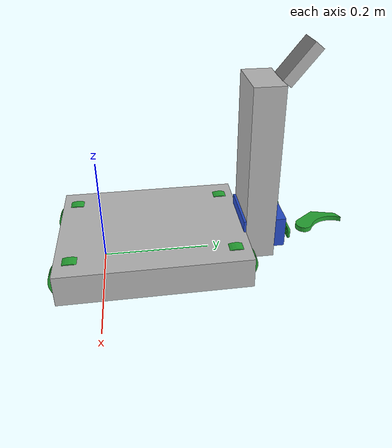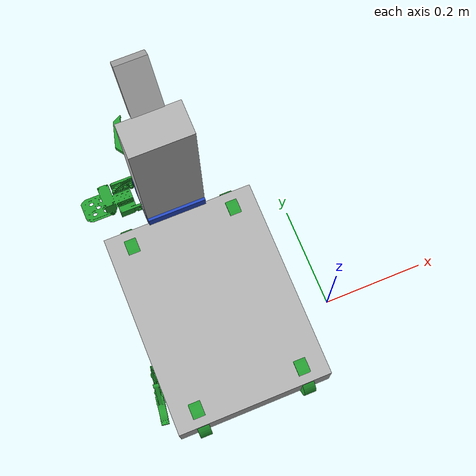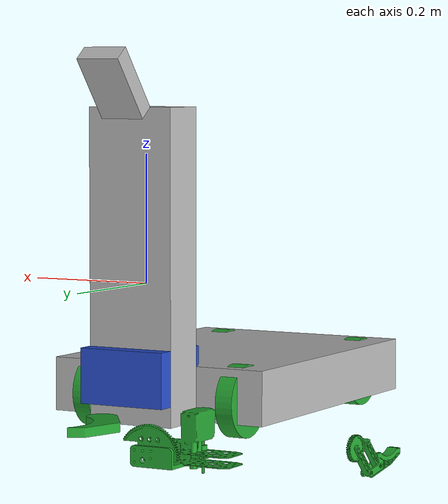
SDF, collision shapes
<?xml version='1.0'?>
<sdf version='1.5'>
  <model name='GearsBot'>
    <link name='chassis'>
      <pose frame=''>0 0 0 0 0 0</pose>
      <inertial>
        <pose frame=''>-0.18899 0.121417 -0.076574 0 -0 0</pose>
        <mass>5.1239</mass>
        <inertia>
          <ixx>0.146667</ixx>
          <ixy>-0.00194486</ixy>
          <ixz>0.00389928</ixz>
          <iyy>0.0922389</iyy>
          <iyz>0.00996714</iyz>
          <izz>0.138363</izz>
        </inertia>
      </inertial>
      <self_collide>0</self_collide>
      <kinematic>0</kinematic>
      <velocity_decay/>
      <sensor name='chassisUltrasonic' type='sonar'>
        <always_on>1</always_on>
        <pose frame=''>-0.125 0.375 -0.085 1.5708 -0 0</pose>
        <sonar>
          <min>0</min>
          <max>2</max>
          <radius>0.1</radius>
        </sonar>
      </sensor>
      <sensor name='robotCamera' type='camera'>
        <visualize>1</visualize>
        <camera name='__default__'>
          <horizontal_fov>1.5</horizontal_fov>
          <image>
            <width>320</width>
            <height>240</height>
          </image>
          <clip>
            <near>0.1</near>
            <far>100</far>
          </clip>
        </camera>
        <pose frame=''>-0.20115 0.42488 0.30943 -0 0.9 1.5708</pose>
      </sensor>
      <visual name='chassis_lump::Camera_visual_1'>
        <pose frame=''>-0.20115 0.42488 0.30943 2.2416 1e-06 -3.14158</pose>
        <geometry>
          <mesh>
            <scale>1 1 1</scale>
            <uri>model://GearsBot/meshes/Camera.STL</uri>
          </mesh>
        </geometry>
        <material>
          <shader type='pixel'/>
        </material>
        <cast_shadows>1</cast_shadows>
        <transparency>0</transparency>
      </visual>
      <visual name='chassis_visual'>
        <pose frame=''>-0.2011 0.0952 -0.1162 0 -0 0</pose>
        <geometry>
          <mesh>
            <scale>1 1 1</scale>
            <uri>model://GearsBot/meshes/chassis.STL</uri>
          </mesh>
        </geometry>
        <material>
          <script>
            <name>Gazebo/Grey</name>
            <uri>file://media/materials/scripts/gazebo.material</uri>
          </script>
          <shader type='pixel'/>
          <ambient>0.3 0.3 0.3 1</ambient>
          <diffuse>0.7 0.7 0.7 1</diffuse>
          <specular>0.01 0.01 0.01 1</specular>
          <emissive>0 0 0 1</emissive>
        </material>
        <cast_shadows>1</cast_shadows>
        <transparency>0</transparency>
      </visual>
      <collision name='chassis_collision'>
        <laser_retro>0</laser_retro>
        <max_contacts>10</max_contacts>
        <pose frame=''>0 0 0 0 -0 0</pose>
        <geometry>
          <mesh>
            <uri>model://GearsBot/meshes/collision/chassis.STL</uri>
          </mesh>
        </geometry>
        <surface>
          <friction>
            <ode>
              <mu>1</mu>
              <mu2>1</mu2>
              <fdir1>0 0 0</fdir1>
              <slip1>0</slip1>
              <slip2>0</slip2>
            </ode>
          </friction>
          <bounce>
            <restitution_coefficient>0</restitution_coefficient>
            <threshold>1e+06</threshold>
          </bounce>
          <contact>
            <collide_without_contact>0</collide_without_contact>
            <collide_without_contact_bitmask>1</collide_without_contact_bitmask>
            <collide_bitmask>1</collide_bitmask>
            <ode>
              <soft_cfm>0</soft_cfm>
              <soft_erp>0.2</soft_erp>
              <kp>1e+13</kp>
              <kd>1</kd>
              <max_vel>0.01</max_vel>
              <min_depth>0</min_depth>
            </ode>
            <bullet>
              <split_impulse>1</split_impulse>
              <split_impulse_penetration_threshold>-0.01</split_impulse_penetration_threshold>
              <soft_cfm>0</soft_cfm>
              <soft_erp>0.2</soft_erp>
              <kp>1e+13</kp>
              <kd>1</kd>
            </bullet>
          </contact>
        </surface>
      </collision>
      <collision name='Camera_collision_1'>
        <laser_retro>0</laser_retro>
        <max_contacts>10</max_contacts>
        <pose frame=''>-0.20115 0.42488 0.30943 1.5708 -0.9 1.5708</pose>
        <geometry>
          <mesh>
            <uri>model://GearsBot/meshes/collision/camera.STL</uri>
          </mesh>
        </geometry>
        <surface>
          <friction>
            <ode>
              <mu>1</mu>
              <mu2>1</mu2>
              <fdir1>0 0 0</fdir1>
              <slip1>0</slip1>
              <slip2>0</slip2>
            </ode>
          </friction>
          <bounce>
            <restitution_coefficient>0</restitution_coefficient>
            <threshold>1e+06</threshold>
          </bounce>
          <contact>
            <collide_without_contact>0</collide_without_contact>
            <collide_without_contact_bitmask>1</collide_without_contact_bitmask>
            <collide_bitmask>1</collide_bitmask>
            <ode>
              <soft_cfm>0</soft_cfm>
              <soft_erp>0.2</soft_erp>
              <kp>1e+13</kp>
              <kd>1</kd>
              <max_vel>0.01</max_vel>
              <min_depth>0</min_depth>
            </ode>
            <bullet>
              <split_impulse>1</split_impulse>
              <split_impulse_penetration_threshold>-0.01</split_impulse_penetration_threshold>
              <soft_cfm>0</soft_cfm>
              <soft_erp>0.2</soft_erp>
              <kp>1e+13</kp>
              <kd>1</kd>
            </bullet>
          </contact>
        </surface>
      </collision>
    </link>
    <link name='backLeftWheel'>
      <pose frame=''>-0.3154 -0.08895 -0.12636 0 -0 1.5708</pose>
      <inertial>
        <pose frame=''>-0.022263 -0.001581 0.02216 0 -0 0</pose>
        <mass>0.18296</mass>
        <inertia>
          <ixx>0.00014966</ixx>
          <ixy>-2.6368e-09</ixy>
          <ixz>2.0517e-09</ixz>
          <iyy>0.00023567</iyy>
          <iyz>1.7444e-09</iyz>
          <izz>0.00014965</izz>
        </inertia>
      </inertial>
      <self_collide>0</self_collide>
      <kinematic>0</kinematic>
      <velocity_decay/>
      <visual name='backLeftWheel_visual'>
        <pose frame=''>0 0 0 0 -0 0</pose>
        <geometry>
          <mesh>
            <scale>1 1 1</scale>
            <uri>model://GearsBot/meshes/collision/OmniCollisional.STL</uri>
          </mesh>
        </geometry>
        <material>
          <script>
            <name>Gazebo/Green</name>
            <uri>file://media/materials/scripts/gazebo.material</uri>
          </script>
          <shader type='pixel'/>
          <ambient>0 1 0 1</ambient>
          <diffuse>0 1 0 1</diffuse>
          <specular>0.1 0.1 0.1 1</specular>
          <emissive>0 0 0 1</emissive>
        </material>
        <cast_shadows>1</cast_shadows>
        <transparency>0</transparency>
      </visual>
      <collision name='backLeftWheel_collision'>
        <laser_retro>0</laser_retro>
        <max_contacts>10</max_contacts>
        <pose frame=''>0 0 0 0 -0 0</pose>
        <geometry>
          <mesh>
            <uri>model://GearsBot/meshes/collision/OmniCollisional.STL</uri>
          </mesh>
        </geometry>
        <surface>
          <friction>
            <ode>
              <mu>1</mu>
              <mu2>1</mu2>
              <fdir1>0 0 0</fdir1>
              <slip1>0</slip1>
              <slip2>0</slip2>
            </ode>
          </friction>
          <bounce>
            <restitution_coefficient>0</restitution_coefficient>
            <threshold>1e+06</threshold>
          </bounce>
          <contact>
            <collide_without_contact>0</collide_without_contact>
            <collide_without_contact_bitmask>1</collide_without_contact_bitmask>
            <collide_bitmask>1</collide_bitmask>
            <ode>
              <soft_cfm>0</soft_cfm>
              <soft_erp>0.2</soft_erp>
              <kp>1e+13</kp>
              <kd>1</kd>
              <max_vel>0.01</max_vel>
              <min_depth>0</min_depth>
            </ode>
            <bullet>
              <split_impulse>1</split_impulse>
              <split_impulse_penetration_threshold>-0.01</split_impulse_penetration_threshold>
              <soft_cfm>0</soft_cfm>
              <soft_erp>0.2</soft_erp>
              <kp>1e+13</kp>
              <kd>1</kd>
            </bullet>
          </contact>
        </surface>
      </collision>
    </link>
    <link name='backRightWheel'>
      <pose frame=''>-0.0868 -0.08895 -0.12636 0 -0 1.5708</pose>
      <inertial>
        <pose frame=''>-0.014099 -0.004525 0.009528 0 -0 0</pose>
        <mass>0.18343</mass>
        <inertia>
          <ixx>0.00015108</ixx>
          <ixy>2.4641e-09</ixy>
          <ixz>3.2659e-09</ixz>
          <iyy>0.00023589</iyy>
          <iyz>1.3873e-08</iyz>
          <izz>0.00015106</izz>
        </inertia>
      </inertial>
      <self_collide>0</self_collide>
      <kinematic>0</kinematic>
      <velocity_decay/>
      <visual name='backRightWheel_visual'>
        <pose frame=''>0 0 0 0 -0 0</pose>
        <geometry>
          <mesh>
            <scale>1 1 1</scale>
            <uri>model://GearsBot/meshes/collision/OmniCollisional.STL</uri>
          </mesh>
        </geometry>
        <material>
          <script>
            <name>Gazebo/Green</name>
            <uri>file://media/materials/scripts/gazebo.material</uri>
          </script>
          <shader type='pixel'/>
          <ambient>0 1 0 1</ambient>
          <diffuse>0 1 0 1</diffuse>
          <specular>0.1 0.1 0.1 1</specular>
          <emissive>0 0 0 1</emissive>
        </material>
        <cast_shadows>1</cast_shadows>
        <transparency>0</transparency>
      </visual>
      <collision name='backRightWheel_collision'>
        <laser_retro>0</laser_retro>
        <max_contacts>10</max_contacts>
        <pose frame=''>0 0 0 0 -0 0</pose>
        <geometry>
          <mesh>
            <uri>model://GearsBot/meshes/collision/OmniCollisional.STL</uri>
          </mesh>
        </geometry>
        <surface>
          <friction>
            <ode>
              <mu>1</mu>
              <mu2>1</mu2>
              <fdir1>0 0 0</fdir1>
              <slip1>0</slip1>
              <slip2>0</slip2>
            </ode>
          </friction>
          <bounce>
            <restitution_coefficient>0</restitution_coefficient>
            <threshold>1e+06</threshold>
          </bounce>
          <contact>
            <collide_without_contact>0</collide_without_contact>
            <collide_without_contact_bitmask>1</collide_without_contact_bitmask>
            <collide_bitmask>1</collide_bitmask>
            <ode>
              <soft_cfm>0</soft_cfm>
              <soft_erp>0.2</soft_erp>
              <kp>1e+13</kp>
              <kd>1</kd>
              <max_vel>0.01</max_vel>
              <min_depth>0</min_depth>
            </ode>
            <bullet>
              <split_impulse>1</split_impulse>
              <split_impulse_penetration_threshold>-0.01</split_impulse_penetration_threshold>
              <soft_cfm>0</soft_cfm>
              <soft_erp>0.2</soft_erp>
              <kp>1e+13</kp>
              <kd>1</kd>
            </bullet>
          </contact>
        </surface>
      </collision>
    </link>
    <link name='elevator'>
      <pose frame=''>0 0 0 0 0 0</pose>
      <inertial>
        <pose frame=''>-0.20055 0.36444 -0.084693 0 -0 0</pose>
        <mass>0.14903</mass>
        <inertia>
          <ixx>0.00015713</ixx>
          <ixy>-2.1626e-06</ixy>
          <ixz>1.588e-06</ixz>
          <iyy>0.00030244</iyy>
          <iyz>-3.8445e-05</iyz>
          <izz>0.00032189</izz>
        </inertia>
      </inertial>
      <self_collide>0</self_collide>
      <kinematic>0</kinematic>
      <velocity_decay/>
      <visual name='elevator_visual'>
        <pose frame=''>-0.2011 0.0952 -0.1162 0 -0 0</pose>
        <geometry>
          <mesh>
            <scale>1 1 1</scale>
            <uri>model://GearsBot/meshes/elevator.STL</uri>
          </mesh>
        </geometry>
        <material>
          <script>
            <name>Gazebo/Blue</name>
            <uri>file://media/materials/scripts/gazebo.material</uri>
          </script>
          <shader type='pixel'/>
          <ambient>0 0 1 1</ambient>
          <diffuse>0 0 1 1</diffuse>
          <specular>0.1 0.1 0.1 1</specular>
          <emissive>0 0 0 1</emissive>
        </material>
        <cast_shadows>1</cast_shadows>
        <transparency>0</transparency>
      </visual>
      <collision name='elevator_collision'>
        <laser_retro>0</laser_retro>
        <max_contacts>10</max_contacts>
        <pose frame=''>0 0 0 0 -0 0</pose>
        <geometry>
          <mesh>
            <uri>model://GearsBot/meshes/collision/elevator.STL</uri>
          </mesh>
        </geometry>
        <surface>
          <friction>
            <ode>
              <mu>1</mu>
              <mu2>1</mu2>
              <fdir1>0 0 0</fdir1>
              <slip1>0</slip1>
              <slip2>0</slip2>
            </ode>
          </friction>
          <bounce>
            <restitution_coefficient>0</restitution_coefficient>
            <threshold>1e+06</threshold>
          </bounce>
          <contact>
            <collide_without_contact>0</collide_without_contact>
            <collide_without_contact_bitmask>1</collide_without_contact_bitmask>
            <collide_bitmask>1</collide_bitmask>
            <ode>
              <soft_cfm>0</soft_cfm>
              <soft_erp>0.2</soft_erp>
              <kp>1e+13</kp>
              <kd>1</kd>
              <max_vel>0.01</max_vel>
              <min_depth>0</min_depth>
            </ode>
            <bullet>
              <split_impulse>1</split_impulse>
              <split_impulse_penetration_threshold>-0.01</split_impulse_penetration_threshold>
              <soft_cfm>0</soft_cfm>
              <soft_erp>0.2</soft_erp>
              <kp>1e+13</kp>
              <kd>1</kd>
            </bullet>
          </contact>
        </surface>
      </collision>
    </link>
    <link name='frontLeftWheel'>
      <pose frame=''>-0.3154 0.27935 -0.12636 0 -0 1.5708</pose>
      <inertial>
        <pose frame=''>-0.0141 -0.004525 0.009528 0 -0 0</pose>
        <mass>0.183431</mass>
        <inertia>
          <ixx>0.000151077</ixx>
          <ixy>2.46441e-09</ixy>
          <ixz>3.26639e-09</ixz>
          <iyy>0.00023589</iyy>
          <iyz>1.38724e-08</iyz>
          <izz>0.000151063</izz>
        </inertia>
      </inertial>
      <self_collide>0</self_collide>
      <kinematic>0</kinematic>
      <velocity_decay/>
      <visual name='frontLeftWheel_visual'>
        <pose frame=''>0 0 0 0 -0 0</pose>
        <geometry>
          <mesh>
            <scale>1 1 1</scale>
            <uri>model://GearsBot/meshes/collision/OmniCollisional.STL</uri>
          </mesh>
        </geometry>
        <material>
          <script>
            <name>Gazebo/Green</name>
            <uri>file://media/materials/scripts/gazebo.material</uri>
          </script>
          <shader type='pixel'/>
          <ambient>0 1 0 1</ambient>
          <diffuse>0 1 0 1</diffuse>
          <specular>0.1 0.1 0.1 1</specular>
          <emissive>0 0 0 1</emissive>
        </material>
        <cast_shadows>1</cast_shadows>
        <transparency>0</transparency>
      </visual>
      <collision name='frontLeftWheel_collision'>
        <laser_retro>0</laser_retro>
        <max_contacts>10</max_contacts>
        <pose frame=''>0 0 0 0 -0 0</pose>
        <geometry>
          <mesh>
            <uri>model://GearsBot/meshes/collision/OmniCollisional.STL</uri>
          </mesh>
        </geometry>
        <surface>
          <friction>
            <ode>
              <mu>1</mu>
              <mu2>1</mu2>
              <fdir1>0 0 0</fdir1>
              <slip1>0</slip1>
              <slip2>0</slip2>
            </ode>
          </friction>
          <bounce>
            <restitution_coefficient>0</restitution_coefficient>
            <threshold>1e+06</threshold>
          </bounce>
          <contact>
            <collide_without_contact>0</collide_without_contact>
            <collide_without_contact_bitmask>1</collide_without_contact_bitmask>
            <collide_bitmask>1</collide_bitmask>
            <ode>
              <soft_cfm>0</soft_cfm>
              <soft_erp>0.2</soft_erp>
              <kp>1e+13</kp>
              <kd>1</kd>
              <max_vel>0.01</max_vel>
              <min_depth>0</min_depth>
            </ode>
            <bullet>
              <split_impulse>1</split_impulse>
              <split_impulse_penetration_threshold>-0.01</split_impulse_penetration_threshold>
              <soft_cfm>0</soft_cfm>
              <soft_erp>0.2</soft_erp>
              <kp>1e+13</kp>
              <kd>1</kd>
            </bullet>
          </contact>
        </surface>
      </collision>
    </link>
    <link name='frontRightWheel'>
      <pose frame=''>-0.0868 0.27935 -0.12636 0 -0 1.5708</pose>
      <inertial>
        <pose frame=''>-0.022263 -0.001581 0.02216 0 -0 0</pose>
        <mass>0.182962</mass>
        <inertia>
          <ixx>0.000149655</ixx>
          <ixy>-2.6172e-09</ixy>
          <ixz>2.06617e-09</ixz>
          <iyy>0.000235671</iyy>
          <iyz>1.7582e-09</iyz>
          <izz>0.000149649</izz>
        </inertia>
      </inertial>
      <self_collide>0</self_collide>
      <kinematic>0</kinematic>
      <velocity_decay/>
      <visual name='frontRightWheel_visual'>
        <pose frame=''>0 0 0 0 -0 0</pose>
        <geometry>
          <mesh>
            <scale>1 1 1</scale>
            <uri>model://GearsBot/meshes/collision/OmniCollisional.STL</uri>
          </mesh>
        </geometry>
        <material>
          <script>
            <name>Gazebo/Green</name>
            <uri>file://media/materials/scripts/gazebo.material</uri>
          </script>
          <shader type='pixel'/>
          <ambient>0 1 0 1</ambient>
          <diffuse>0 1 0 1</diffuse>
          <specular>0.1 0.1 0.1 1</specular>
          <emissive>0 0 0 1</emissive>
        </material>
        <cast_shadows>1</cast_shadows>
        <transparency>0</transparency>
      </visual>
      <collision name='frontRightWheel_collision'>
        <laser_retro>0</laser_retro>
        <max_contacts>10</max_contacts>
        <pose frame=''>0 0 0 0 -0 0</pose>
        <geometry>
          <mesh>
            <uri>model://GearsBot/meshes/collision/OmniCollisional.STL</uri>
          </mesh>
        </geometry>
        <surface>
          <friction>
            <ode>
              <mu>1</mu>
              <mu2>1</mu2>
              <fdir1>0 0 0</fdir1>
              <slip1>0</slip1>
              <slip2>0</slip2>
            </ode>
          </friction>
          <bounce>
            <restitution_coefficient>0</restitution_coefficient>
            <threshold>1e+06</threshold>
          </bounce>
          <contact>
            <collide_without_contact>0</collide_without_contact>
            <collide_without_contact_bitmask>1</collide_without_contact_bitmask>
            <collide_bitmask>1</collide_bitmask>
            <ode>
              <soft_cfm>0</soft_cfm>
              <soft_erp>0.2</soft_erp>
              <kp>1e+13</kp>
              <kd>1</kd>
              <max_vel>0.01</max_vel>
              <min_depth>0</min_depth>
            </ode>
            <bullet>
              <split_impulse>1</split_impulse>
              <split_impulse_penetration_threshold>-0.01</split_impulse_penetration_threshold>
              <soft_cfm>0</soft_cfm>
              <soft_erp>0.2</soft_erp>
              <kp>1e+13</kp>
              <kd>1</kd>
            </bullet>
          </contact>
        </surface>
      </collision>
    </link>
    <link name='leftFinger'>
      <pose frame=''>-0.219621 0.48766 -0.133285 1.5708 4e-06 -2.9837</pose>
      <inertial>
        <pose frame=''>0.013123 -0 0.03315 0 -0 0</pose>
        <mass>0.049208</mass>
        <inertia>
          <ixx>5.2203e-05</ixx>
          <ixy>-4.2027e-22</ixy>
          <ixz>1.0345e-05</ixz>
          <iyy>6.106e-05</iyy>
          <iyz>-2.2949e-21</iyz>
          <izz>1.018e-05</izz>
        </inertia>
      </inertial>
      <self_collide>0</self_collide>
      <kinematic>0</kinematic>
      <velocity_decay/>
      <sensor name='leftFingerContact' type='contact'>
        <always_on>1</always_on>
        <contact>
          <collision>leftFinger_collision</collision>
          <topic>__default_topic__</topic>
        </contact>
      </sensor>
      <visual name='leftFinger_visual'>
        <pose frame=''>0 0 0 0 -0 0</pose>
        <geometry>
          <mesh>
            <scale>1 1 1</scale>
            <uri>model://GearsBot/meshes/collision/leftFinger.STL</uri>
          </mesh>
        </geometry>
        <material>
          <script>
            <name>Gazebo/Green</name>
            <uri>file://media/materials/scripts/gazebo.material</uri>
          </script>
          <shader type='pixel'/>
          <ambient>0 1 0 1</ambient>
          <diffuse>0 1 0 1</diffuse>
          <specular>0.1 0.1 0.1 1</specular>
          <emissive>0 0 0 1</emissive>
        </material>
        <cast_shadows>1</cast_shadows>
        <transparency>0</transparency>
      </visual>
      <collision name='leftFingerCollision_collision'>
        <laser_retro>0</laser_retro>
        <max_contacts>10</max_contacts>
        <pose frame=''>0 0 0 0 -0 0</pose>
        <geometry>
          <mesh>
            <uri>model://GearsBot/meshes/collision/leftFinger.STL</uri>
          </mesh>
        </geometry>
        <surface>
          <friction>
            <ode>
              <mu>1</mu>
              <mu2>1</mu2>
              <fdir1>0 0 0</fdir1>
              <slip1>0</slip1>
              <slip2>0</slip2>
            </ode>
          </friction>
          <bounce>
            <restitution_coefficient>0</restitution_coefficient>
            <threshold>1e+06</threshold>
          </bounce>
          <contact>
            <collide_without_contact>0</collide_without_contact>
            <collide_without_contact_bitmask>1</collide_without_contact_bitmask>
            <collide_bitmask>1</collide_bitmask>
            <ode>
              <soft_cfm>0</soft_cfm>
              <soft_erp>0.2</soft_erp>
              <kp>1e+13</kp>
              <kd>1</kd>
              <max_vel>0.01</max_vel>
              <min_depth>0</min_depth>
            </ode>
            <bullet>
              <split_impulse>1</split_impulse>
              <split_impulse_penetration_threshold>-0.01</split_impulse_penetration_threshold>
              <soft_cfm>0</soft_cfm>
              <soft_erp>0.2</soft_erp>
              <kp>1e+13</kp>
              <kd>1</kd>
            </bullet>
          </contact>
        </surface>
      </collision>
    </link>
    <link name='rightFinger'>
      <pose frame=''>-0.181521 0.48766 -0.133285 -1.5708 -4e-06 -0.1386</pose>
      <inertial>
        <pose frame=''>0.013123 -0 0.03315 0 -0 0</pose>
        <mass>0.049208</mass>
        <inertia>
          <ixx>5.2203e-05</ixx>
          <ixy>-3.4627e-22</ixy>
          <ixz>1.0345e-05</ixz>
          <iyy>6.106e-05</iyy>
          <iyz>-2.9606e-22</iyz>
          <izz>1.018e-05</izz>
        </inertia>
      </inertial>
      <self_collide>0</self_collide>
      <kinematic>0</kinematic>
      <velocity_decay/>
      <visual name='rightFinger_visual'>
        <pose frame=''>0 0 0 0 -0 0</pose>
        <geometry>
          <mesh>
            <scale>1 1 1</scale>
            <uri>model://GearsBot/meshes/collision/rightFinger.STL</uri>
          </mesh>
        </geometry>
        <material>
          <script>
            <name>Gazebo/Green</name>
            <uri>file://media/materials/scripts/gazebo.material</uri>
          </script>
          <shader type='pixel'/>
          <ambient>0 1 0 1</ambient>
          <diffuse>0 1 0 1</diffuse>
          <specular>0.1 0.1 0.1 1</specular>
          <emissive>0 0 0 1</emissive>
        </material>
        <cast_shadows>1</cast_shadows>
        <transparency>0</transparency>
      </visual>
      <collision name='rightFingerCollision_collision'>
        <laser_retro>0</laser_retro>
        <max_contacts>10</max_contacts>
        <pose frame=''>0 0 0 0 -0 0</pose>
        <geometry>
          <mesh>
            <uri>model://GearsBot/meshes/collision/rightFinger.STL</uri>
          </mesh>
        </geometry>
        <surface>
          <friction>
            <ode>
              <mu>1</mu>
              <mu2>1</mu2>
              <fdir1>0 0 0</fdir1>
              <slip1>0</slip1>
              <slip2>0</slip2>
            </ode>
          </friction>
          <bounce>
            <restitution_coefficient>0</restitution_coefficient>
            <threshold>1e+06</threshold>
          </bounce>
          <contact>
            <collide_without_contact>0</collide_without_contact>
            <collide_without_contact_bitmask>1</collide_without_contact_bitmask>
            <collide_bitmask>1</collide_bitmask>
            <ode>
              <soft_cfm>0</soft_cfm>
              <soft_erp>0.2</soft_erp>
              <kp>1e+13</kp>
              <kd>1</kd>
              <max_vel>0.01</max_vel>
              <min_depth>0</min_depth>
            </ode>
            <bullet>
              <split_impulse>1</split_impulse>
              <split_impulse_penetration_threshold>-0.01</split_impulse_penetration_threshold>
              <soft_cfm>0</soft_cfm>
              <soft_erp>0.2</soft_erp>
              <kp>1e+13</kp>
              <kd>1</kd>
            </bullet>
          </contact>
        </surface>
      </collision>
    </link>
    <link name='wrist'>
      <pose frame=''>-0.20115 0.42766 -0.13828 1.5708 0 -1.5708</pose>
      <inertial>
        <pose frame=''>-7.1e-05 0.016629 0.040792 0 -0 0</pose>
        <mass>0.20421</mass>
        <inertia>
          <ixx>0.00051443</ixx>
          <ixy>9.0062e-07</ixy>
          <ixz>1.1456e-05</ixz>
          <iyy>0.00058716</iyy>
          <iyz>-1.571e-05</iyz>
          <izz>0.00018931</izz>
        </inertia>
      </inertial>
      <self_collide>0</self_collide>
      <kinematic>0</kinematic>
      <velocity_decay/>
      <visual name='wrist_visual'>
        <pose frame=''>0.095 0.05 0 0 -1.57 0</pose>
        <geometry>
          <mesh>
            <scale>1 1 1</scale>
            <uri>model://GearsBot/meshes/wrist.STL</uri>
          </mesh>
        </geometry>
        <material>
          <script>
            <name>Gazebo/Green</name>
            <uri>file://media/materials/scripts/gazebo.material</uri>
          </script>
          <shader type='pixel'/>
          <ambient>0 1 0 1</ambient>
          <diffuse>0 1 0 1</diffuse>
          <specular>0.1 0.1 0.1 1</specular>
          <emissive>0 0 0 1</emissive>
        </material>
        <cast_shadows>1</cast_shadows>
        <transparency>0</transparency>
      </visual>
      <collision name='wrist_collision'>
        <laser_retro>0</laser_retro>
        <max_contacts>10</max_contacts>
        <pose frame=''>0 0 0 0 -0 0</pose>
        <geometry>
          <mesh>
            <uri>model://GearsBot/meshes/collision/wrist.STL</uri>
          </mesh>
        </geometry>
        <surface>
          <friction>
            <ode>
              <mu>1</mu>
              <mu2>1</mu2>
              <fdir1>0 0 0</fdir1>
              <slip1>0</slip1>
              <slip2>0</slip2>
            </ode>
          </friction>
          <bounce>
            <restitution_coefficient>0</restitution_coefficient>
            <threshold>1e+06</threshold>
          </bounce>
          <contact>
            <collide_without_contact>0</collide_without_contact>
            <collide_without_contact_bitmask>1</collide_without_contact_bitmask>
            <collide_bitmask>1</collide_bitmask>
            <ode>
              <soft_cfm>0</soft_cfm>
              <soft_erp>0.2</soft_erp>
              <kp>1e+13</kp>
              <kd>1</kd>
              <max_vel>0.01</max_vel>
              <min_depth>0</min_depth>
            </ode>
            <bullet>
              <split_impulse>1</split_impulse>
              <split_impulse_penetration_threshold>-0.01</split_impulse_penetration_threshold>
              <soft_cfm>0</soft_cfm>
              <soft_erp>0.2</soft_erp>
              <kp>1e+13</kp>
              <kd>1</kd>
            </bullet>
          </contact>
        </surface>
      </collision>
    </link>
    <joint name='jBackLeft' type='revolute'>
      <parent>chassis</parent>
      <child>backLeftWheel</child>
      <axis>
        <xyz>-1 -4e-06 0</xyz>
        <use_parent_model_frame>1</use_parent_model_frame>
        <limit>
          <lower>-1e+16</lower>
          <upper>1e+16</upper>
          <effort>-1</effort>
          <velocity>-1</velocity>
        </limit>
        <dynamics>
          <spring_reference>0</spring_reference>
          <spring_stiffness>0</spring_stiffness>
          <damping>0.2</damping>
          <friction>0</friction>
        </dynamics>
      </axis>
      <physics>
        <ode>
          <limit>
            <cfm>0</cfm>
            <erp>0.2</erp>
          </limit>
          <suspension>
            <cfm>0</cfm>
            <erp>0.2</erp>
          </suspension>
        </ode>
      </physics>
    </joint>
    <joint name='jBackRight' type='revolute'>
      <parent>chassis</parent>
      <child>backRightWheel</child>
      <axis>
        <xyz>-1 -4e-06 0</xyz>
        <use_parent_model_frame>1</use_parent_model_frame>
        <limit>
          <lower>-1e+16</lower>
          <upper>1e+16</upper>
          <effort>-1</effort>
          <velocity>-1</velocity>
        </limit>
        <dynamics>
          <spring_reference>0</spring_reference>
          <spring_stiffness>0</spring_stiffness>
          <damping>0.2</damping>
          <friction>0</friction>
        </dynamics>
      </axis>
      <physics>
        <ode>
          <limit>
            <cfm>0</cfm>
            <erp>0.2</erp>
          </limit>
          <suspension>
            <cfm>0</cfm>
            <erp>0.2</erp>
          </suspension>
        </ode>
      </physics>
    </joint>
    <joint name='jElevator' type='prismatic'>
      <parent>chassis</parent>
      <child>elevator</child>
      <pose frame=''>0 0 0 0 -0 0</pose>
      <axis>
        <xyz>0 0 1</xyz>
        <use_parent_model_frame>1</use_parent_model_frame>
        <limit>
          <lower>0</lower>
          <upper>0.3</upper>
          <effort>40</effort>
          <velocity>100</velocity>
        </limit>
        <dynamics>
          <spring_reference>0</spring_reference>
          <spring_stiffness>0</spring_stiffness>
          <damping>5</damping>
          <friction>10</friction>
        </dynamics>
      </axis>
      <physics>
        <ode>
          <cfm>0</cfm>
          <bounce>0</bounce>
          <velocity>0</velocity>
          <fudge_factor>0</fudge_factor>
          <limit>
            <cfm>0</cfm>
            <erp>0.2</erp>
          </limit>
          <suspension>
            <cfm>0</cfm>
            <erp>0.2</erp>
          </suspension>
        </ode>
      </physics>
    </joint>
    <joint name='jFrontLeft' type='revolute'>
      <parent>chassis</parent>
      <child>frontLeftWheel</child>
      <axis>
        <xyz>-1 -4e-06 0</xyz>
        <use_parent_model_frame>1</use_parent_model_frame>
        <limit>
          <lower>-1e+16</lower>
          <upper>1e+16</upper>
          <effort>-1</effort>
          <velocity>-1</velocity>
        </limit>
        <dynamics>
          <spring_reference>0</spring_reference>
          <spring_stiffness>0</spring_stiffness>
          <damping>0.2</damping>
          <friction>0</friction>
        </dynamics>
      </axis>
      <physics>
        <ode>
          <limit>
            <cfm>0</cfm>
            <erp>0.2</erp>
          </limit>
          <suspension>
            <cfm>0</cfm>
            <erp>0.2</erp>
          </suspension>
        </ode>
      </physics>
    </joint>
    <joint name='jFrontRight' type='revolute'>
      <parent>chassis</parent>
      <child>frontRightWheel</child>
      <axis>
        <xyz>-1 -4e-06 0</xyz>
        <use_parent_model_frame>1</use_parent_model_frame>
        <limit>
          <lower>-1e+16</lower>
          <upper>1e+16</upper>
          <effort>-1</effort>
          <velocity>-1</velocity>
        </limit>
        <dynamics>
          <spring_reference>0</spring_reference>
          <spring_stiffness>0</spring_stiffness>
          <damping>0.2</damping>
          <friction>0</friction>
        </dynamics>
      </axis>
      <physics>
        <ode>
          <limit>
            <cfm>0</cfm>
            <erp>0.2</erp>
          </limit>
          <suspension>
            <cfm>0</cfm>
            <erp>0.2</erp>
          </suspension>
        </ode>
      </physics>
    </joint>
    <joint name='jLeftFinger' type='revolute'>
      <parent>wrist</parent>
      <child>leftFinger</child>
      <axis>
        <xyz>4e-06 0 -1</xyz>
        <use_parent_model_frame>1</use_parent_model_frame>
        <limit>
          <lower>-0.524</lower>
          <upper>0.131</upper>
          <effort>100</effort>
          <velocity>100</velocity>
        </limit>
        <dynamics>
          <spring_reference>0</spring_reference>
          <spring_stiffness>0</spring_stiffness>
          <damping>0.2</damping>
          <friction>0</friction>
        </dynamics>
      </axis>
      <physics>
        <ode>
          <limit>
            <cfm>0</cfm>
            <erp>0.2</erp>
          </limit>
          <suspension>
            <cfm>0</cfm>
            <erp>0.2</erp>
          </suspension>
        </ode>
      </physics>
    </joint>
    <joint name='jRightFinger' type='revolute'>
      <parent>wrist</parent>
      <child>rightFinger</child>
      <axis>
        <xyz>-3e-06 7e-06 1</xyz>
        <use_parent_model_frame>1</use_parent_model_frame>
        <limit>
          <lower>-0.524</lower>
          <upper>0.131</upper>
          <effort>100</effort>
          <velocity>100</velocity>
        </limit>
        <dynamics>
          <spring_reference>0</spring_reference>
          <spring_stiffness>0</spring_stiffness>
          <damping>0.2</damping>
          <friction>0</friction>
        </dynamics>
      </axis>
      <physics>
        <ode>
          <limit>
            <cfm>0</cfm>
            <erp>0.2</erp>
          </limit>
          <suspension>
            <cfm>0</cfm>
            <erp>0.2</erp>
          </suspension>
        </ode>
      </physics>
    </joint>
    <joint name='jWrist' type='revolute'>
      <parent>elevator</parent>
      <child>wrist</child>
      <axis>
        <xyz>-1 4e-06 -4e-06</xyz>
        <use_parent_model_frame>1</use_parent_model_frame>
        <limit>
          <lower>-1</lower>
          <upper>0</upper>
          <effort>100</effort>
          <velocity>1</velocity>
        </limit>
        <dynamics>
          <spring_reference>0</spring_reference>
          <spring_stiffness>0</spring_stiffness>
          <damping>0.1</damping>
          <friction>0.1</friction>
        </dynamics>
      </axis>
      <physics>
        <ode>
          <limit>
            <cfm>0</cfm>
            <erp>0.2</erp>
          </limit>
          <suspension>
            <cfm>0</cfm>
            <erp>0.2</erp>
          </suspension>
        </ode>
      </physics>
    </joint>
    <static>0</static>
    <allow_auto_disable>1</allow_auto_disable>
    <plugin name='clock' filename='libclock.so'>
      <topic>/gazebo/frc/time</topic>
    </plugin>
    <plugin name='jFrontLeft_motor' filename='libdc_motor.so'>
      <joint>jFrontLeft</joint>
      <topic>/gazebo/frc/simulator/pwm/1</topic>
      <multiplier>20.0</multiplier>
    </plugin>
    <plugin name='jBackLeft_motor' filename='libdc_motor.so'>
      <joint>jBackLeft</joint>
      <topic>/gazebo/frc/simulator/pwm/2</topic>
      <multiplier>20.0</multiplier>
    </plugin>
    <plugin name='jFrontRight_motor' filename='libdc_motor.so'>
      <joint>jFrontRight</joint>
      <topic>/gazebo/frc/simulator/pwm/3</topic>
      <multiplier>-20.0</multiplier>
    </plugin>
    <plugin name='jBackRight_motor' filename='libdc_motor.so'>
      <joint>jBackRight</joint>
      <topic>/gazebo/frc/simulator/pwm/4</topic>
      <multiplier>-20.0</multiplier>
    </plugin>
    <plugin name='jBackLeft_encoder' filename='libencoder.so'>
      <joint>jBackLeft</joint>
      <topic>/gazebo/frc/simulator/dio/1/2</topic>
      <units>degrees</units>
    </plugin>
    <plugin name='jBackRight_encoder' filename='libencoder.so'>
      <joint>jBackRight</joint>
      <topic>/gazebo/frc/simulator/dio/3/4</topic>
      <units>degrees</units>
    </plugin>
    <plugin name='chassis_gyro' filename='libgyro.so'>
      <link>chassis</link>
      <topic>/gazebo/frc/simulator/analog/1</topic>
      <axis>yaw</axis>
      <units>degrees</units>
    </plugin>
    <plugin name='chassisUltrasonic_rangefinder' filename='librangefinder.so'>
      <sensor>chassisUltrasonic</sensor>
      <topic>/gazebo/frc/simulator/analog/6</topic>
    </plugin>
    <plugin name='jElevator_motor' filename='libdc_motor.so'>
      <joint>jElevator</joint>
      <topic>/gazebo/frc/simulator/pwm/5</topic>
      <multiplier>20.0</multiplier>
    </plugin>
    <plugin name='jElevator_pot' filename='libpotentiometer.so'>
      <joint>jElevator</joint>
      <topic>/gazebo/frc/simulator/analog/2</topic>
    </plugin>
    <plugin name='jWrist_motor' filename='libdc_motor.so'>
      <joint>jWrist</joint>
      <topic>/gazebo/frc/simulator/pwm/6</topic>
      <multiplier>5.0</multiplier>
    </plugin>
    <plugin name='jWrist_pot' filename='libpotentiometer.so'>
      <joint>jWrist</joint>
      <topic>/gazebo/frc/simulator/analog/3</topic>
      <units>degrees</units>
    </plugin>
    <plugin name='jLeftFinger_motor' filename='libdc_motor.so'>
      <joint>jLeftFinger</joint>
      <topic>/gazebo/frc/simulator/pwm/7</topic>
      <multiplier>1.0</multiplier>
    </plugin>
    <plugin name='jRightFinger_motor' filename='libdc_motor.so'>
      <joint>jRightFinger</joint>
      <topic>/gazebo/frc/simulator/pwm/7</topic>
      <multiplier>1.0</multiplier>
    </plugin>
    <plugin name='leftFingerContact_limit' filename='liblimit_switch.so'>
      <topic>/gazebo/frc/simulator/dio/5</topic>
      <type>external</type>
      <sensor>leftFingerContact</sensor>
    </plugin>
  </model>
</sdf>
